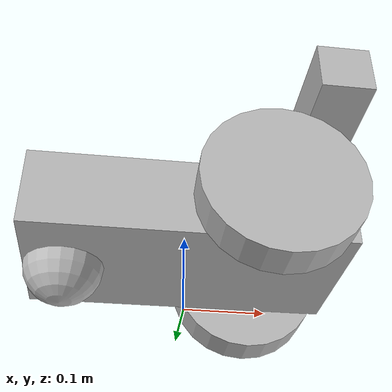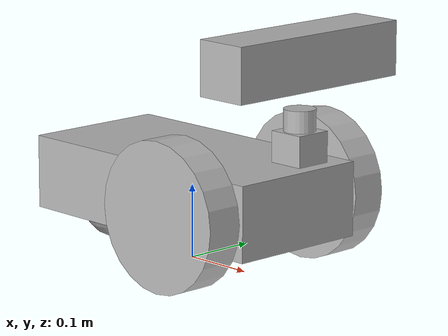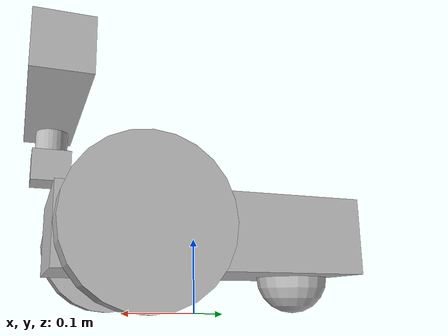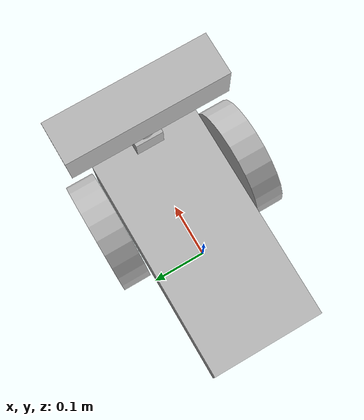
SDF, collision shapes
<?xml version='1.0'?>
<sdf version='1.4'>
  <model name="my_robot">
  <static>false</static>
	<link name='chassis'>
      <pose>0 0 .1 0 0 0</pose>
      <collision name='collision'>
        <geometry>
          <box>
            <size>.4 .2 .1</size>
          </box>
        </geometry>
      </collision>

      <visual name='visual'>
        <pose>0 0 0.05 0 0 0</pose>
        <geometry>
			<mesh>
			  <uri>model://pioneer2dx/meshes/chassis.dae</uri>
			  <scale>0.9 0.5 0.5</scale>
			</mesh>
		</geometry>
      </visual>

      <collision name='caster_collision'>
        <pose>-0.15 0 -0.05 0 0 0</pose>
        <geometry>
          <sphere>
          <radius>.05</radius>
        </sphere>
      </geometry>

      <surface>
        <friction>
          <ode>
            <mu>0</mu>
            <mu2>0</mu2>
            <slip1>1.0</slip1>
            <slip2>1.0</slip2>
          </ode>
        </friction>
      </surface>
    </collision>

    <visual name='caster_visual'>
      <pose>-0.15 0 -0.05 0 0 0</pose>
      <geometry>
        <sphere>
          <radius>.05</radius>
        </sphere>
      </geometry>
    </visual>
  </link>

  <link name="left_wheel">
    <pose>0.1 0.13 0.1 0 1.5707 1.5707</pose>
    <collision name="collision">
      <geometry>
        <cylinder>
          <radius>.1</radius>
          <length>.05</length>
        </cylinder>
      </geometry>
    </collision>
    <visual name="visual">
      <geometry>
        <cylinder>
          <radius>.1</radius>
          <length>.05</length>
        </cylinder>
      </geometry>
    </visual>
  </link>

  <link name="right_wheel">
    <pose>0.1 -0.13 0.1 0 1.5707 1.5707</pose>
    <collision name="collision">
      <geometry>
        <cylinder>
          <radius>.1</radius>
          <length>.05</length>
        </cylinder>
      </geometry>
    </collision>
    <visual name="visual">
      <geometry>
        <cylinder>
          <radius>.1</radius>
          <length>.05</length>
        </cylinder>
      </geometry>
    </visual>
  </link>

  <joint type="revolute" name="left_wheel_hinge">
    <pose>0 0 -0.03 0 0 0</pose>
    <child>left_wheel</child>
    <parent>chassis</parent>
    <axis>
      <xyz>0 1 0</xyz>
    </axis>
  </joint>

  <joint type="revolute" name="right_wheel_hinge">
    <pose>0 0 0.03 0 0 0</pose>
    <child>right_wheel</child>
    <parent>chassis</parent>
    <axis>
      <xyz>0 1 0</xyz>
    </axis>
  </joint>

	<include>
		<uri>model://pandora_hokuyo</uri>
		<pose>0.2 0 0.2 0 0 0</pose>
	</include>
	<joint name="hokuyo_joint" type="revolute">
	  <child>pandora_hokuyo::link</child>
	  <parent>chassis</parent>
	  <axis>
	    <xyz>0 0 1</xyz>
	    <limit>
	      <upper>0</upper>
	      <lower>0</lower>
	    </limit>
	  </axis>
	</joint>

	<include>
		<uri>model://pandora_kinect</uri>
		<pose>0.2 0 0.3 0 0 0</pose>
	</include>
	<joint name="kinect_joint" type="revolute">
	  <child>pandora_kinect::link</child>
	  <parent>chassis</parent>
	  <axis>
	    <xyz>0 0 1</xyz>
	    <limit>
	      <upper>0</upper>
	      <lower>0</lower>
	    </limit>
	  </axis>
	</joint>

  </model>
</sdf>

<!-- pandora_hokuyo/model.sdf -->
<sdf version="1.4">
  <model name="pandora_hokuyo">
    <pose>0 0 0.035 0 0 0</pose>
    <link name="laser">
      <inertial>
        <mass>0.1</mass>
      </inertial>
      <visual name="visual">
        <geometry>
          <mesh>
            <uri>model://hokuyo/meshes/hokuyo.dae</uri>
          </mesh>
        </geometry>
      </visual>

      <collision name="collision-base">
        <pose>0 0 -0.0145 0 0 0</pose>
        <geometry>
          <box>
            <size>0.05 0.05 0.041</size>
          </box>
        </geometry>
      </collision>

      <collision name="collision-top">
        <pose>0 0 0.0205 0 0 0</pose>
        <geometry>
          <cylinder>
            <radius>0.021</radius>
            <length>0.029</length>
          </cylinder>
        </geometry>
      </collision>

      <sensor name="laser" type="ray">
        <pose>0.01 0 0.0175 0 -0 0</pose>
        <ray>
          <scan>
            <horizontal>
              <samples>640</samples>
              <resolution>1</resolution>
              <min_angle>-2.26889</min_angle>
              <max_angle>2.268899</max_angle>
            </horizontal>
          </scan>
          <range>
            <min>0.08</min>
            <max>10</max>
            <resolution>0.01</resolution>
          </range>
        </ray>

        <plugin name="laser" filename="libRayPlugin.so" />
        <plugin name="laser2Ros" filename="libgazebo_ros_laser.so">
			<topicName>/slam/scan</topicName>
			<frameName>/laser</frameName>
		</plugin>

        <always_on>1</always_on>
        <update_rate>30</update_rate>
        <visualize>true</visualize>
      </sensor>
    </link>
  </model>
</sdf>

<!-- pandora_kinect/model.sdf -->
<sdf version="1.4">
  <model name="pandora_kinect">
    <pose>0 0 0.036 0 0 0</pose>
    <link name="link">
      <inertial>
        <mass>0.1</mass>
      </inertial>

      <collision name="collision">
        <geometry>
          <box>
            <size>0.073000 0.276000 0.072000</size>
          </box>
        </geometry>
      </collision>
      <visual name="visual">
        <geometry>
          <mesh>
            <uri>model://kinect/meshes/kinect.dae</uri>
          </mesh>
        </geometry>
      </visual>
      <sensor name="kinect" type="depth">
        <update_rate>20</update_rate>
        <camera>
          <horizontal_fov>1.047198</horizontal_fov>
          <image>
            <width>640</width>
            <height>480</height>
            <format>R8G8B8</format>
          </image>
          <clip>
            <near>0.05</near>
            <far>3</far>
          </clip>
        </camera>

        <plugin name="depth2ros" filename="libgazebo_ros_openni_kinect.so">
			<pointCloudTopicName>/cloud_in</pointCloudTopicName>
			<frameName>kinect</frameName>
			<cameraName>kinect</cameraName>
			<imageTopicName>image</imageTopicName>
			<depthImageTopicName>depth/image</depthImageTopicName>
			<depthImageCameraInfoTopicName>depth/image/info</depthImageCameraInfoTopicName>
			<pointCloudCutoff>0.4</pointCloudCutoff>
		</plugin>

      </sensor>
    </link>
  </model>
</sdf>
